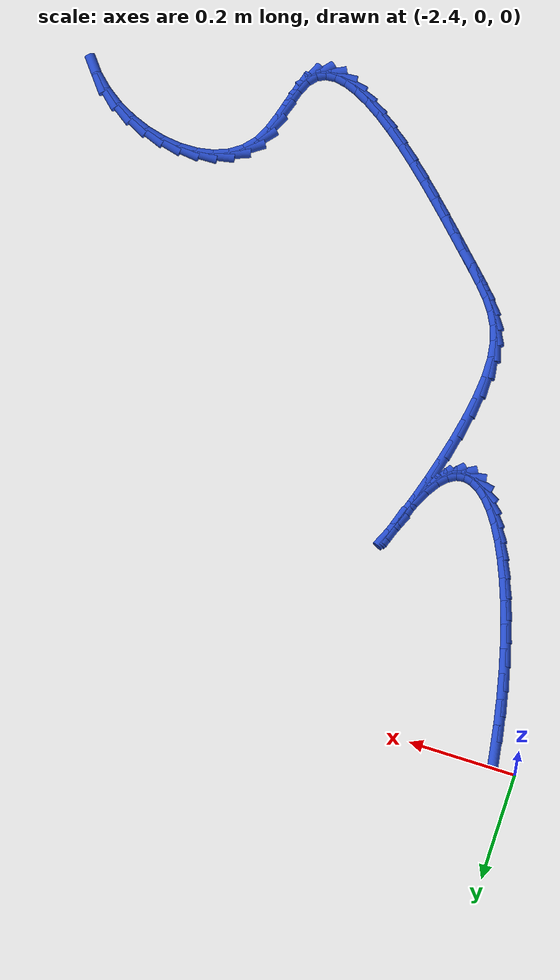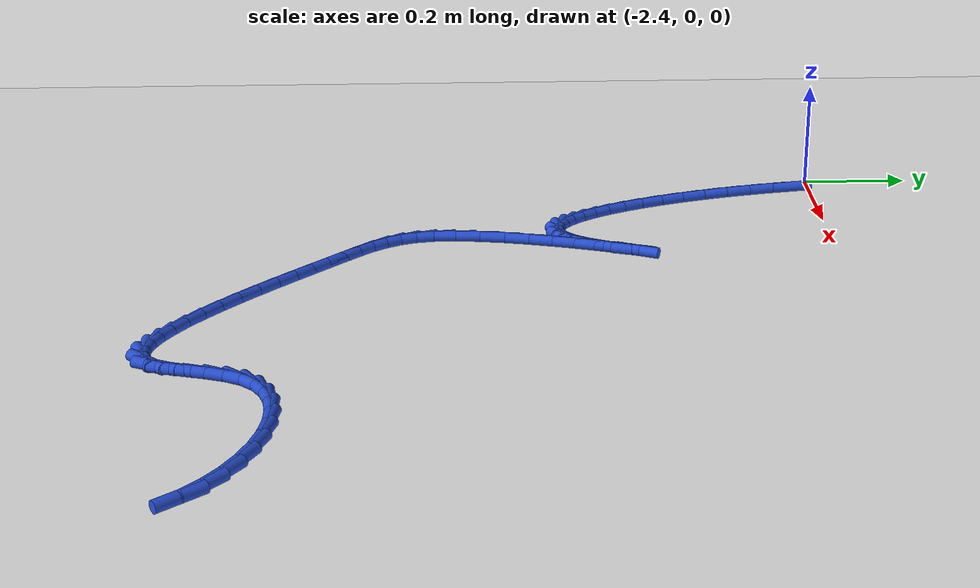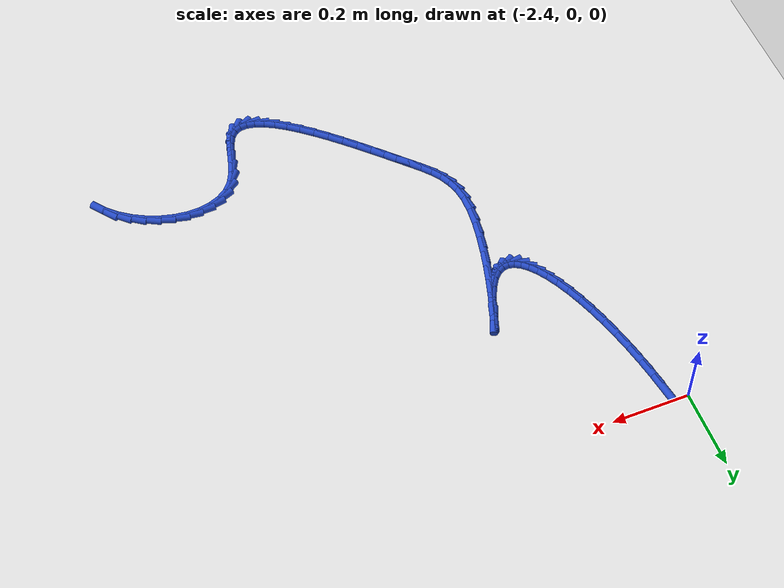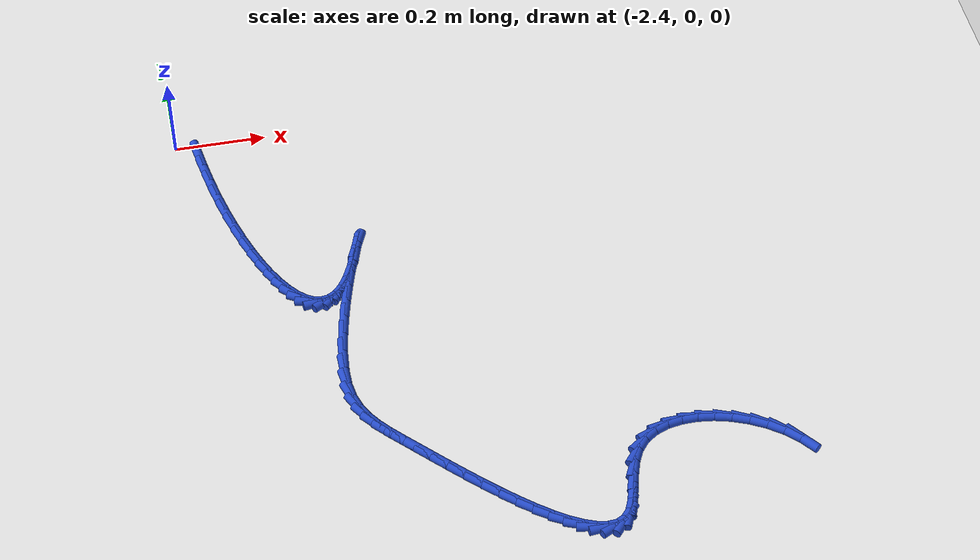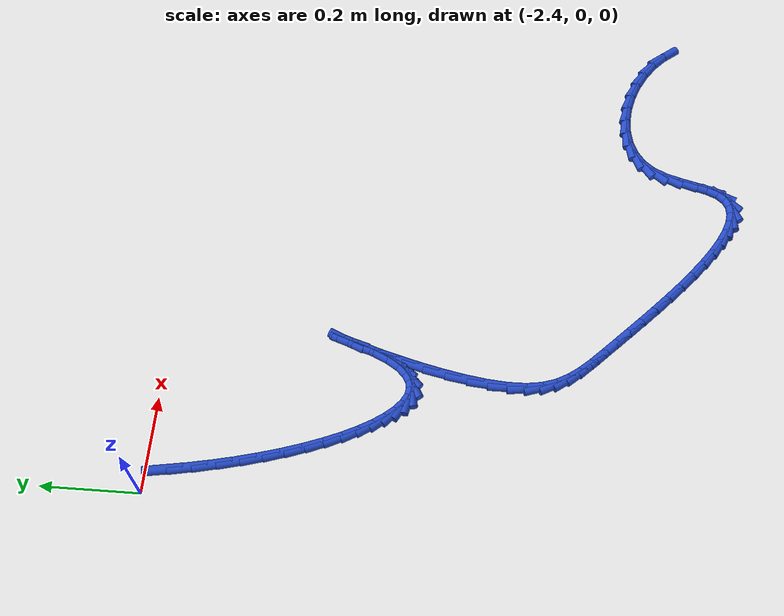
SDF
<sdf version="1.6">
 <world name="default">
  <model name="ground_plane">
   <static>1</static>
   <link name="link">
    <collision name="collision">
     <geometry><plane><normal>0 0 1</normal><size>100 100</size></plane></geometry>
     <surface><friction><ode><mu>100</mu><mu2>50</mu2></ode></friction></surface>
    </collision>
    <visual name="visual">
     <cast_shadows>0</cast_shadows>
     <geometry><plane><normal>0 0 1</normal><size>100 100</size></plane></geometry>
     <material>
      <script><uri>file://media/materials/scripts/gazebo.material</uri><name>Gazebo/WhiteGlow</name></script>
     </material>
    </visual>
   </link>
  </model>
  <model name="line">
   <link name="link_143">
    <pose>-2.3522133778798833 -0.036063328517618926 0.01 0 1.57 -1.4078476218534601</pose>
    <collision name="collision">
     <geometry><cylinder><radius>0.01</radius><length>0.08</length></cylinder></geometry>
    </collision>
    <visual name="visual">
     <material>
      <script><name>Gazebo/Blue</name><uri>file://media/materials/scripts/gazebo.material</uri></script>
     </material>
     <geometry><cylinder><radius>0.01</radius><length>0.08</length></cylinder></geometry>
    </visual>
   </link>
   <link name="link_144">
    <pose>-2.3443666337062106 -0.08379105533631914 0.01 0 1.57 -1.37872939363346</pose>
    <collision name="collision">
     <geometry><cylinder><radius>0.01</radius><length>0.08</length></cylinder></geometry>
    </collision>
    <visual name="visual">
     <material>
      <script><name>Gazebo/Blue</name><uri>file://media/materials/scripts/gazebo.material</uri></script>
     </material>
     <geometry><cylinder><radius>0.01</radius><length>0.08</length></cylinder></geometry>
    </visual>
   </link>
   <link name="link_145">
    <pose>-2.335224302626335 -0.13080401158854174 0.01 0 1.57 -1.3495189038603417</pose>
    <collision name="collision">
     <geometry><cylinder><radius>0.01</radius><length>0.08</length></cylinder></geometry>
    </collision>
    <visual name="visual">
     <material>
      <script><name>Gazebo/Blue</name><uri>file://media/materials/scripts/gazebo.material</uri></script>
     </material>
     <geometry><cylinder><radius>0.01</radius><length>0.08</length></cylinder></geometry>
    </visual>
   </link>
   <link name="link_146">
    <pose>-2.324893914633459 -0.17672478491549046 0.01 0 1.57 -1.3195155107283052</pose>
    <collision name="collision">
     <geometry><cylinder><radius>0.01</radius><length>0.08</length></cylinder></geometry>
    </collision>
    <visual name="visual">
     <material>
      <script><name>Gazebo/Blue</name><uri>file://media/materials/scripts/gazebo.material</uri></script>
     </material>
     <geometry><cylinder><radius>0.01</radius><length>0.08</length></cylinder></geometry>
    </visual>
   </link>
   <link name="link_147">
    <pose>-2.313482999720782 -0.22117596295836883 0.01 0 1.57 -1.2879175798667226</pose>
    <collision name="collision">
     <geometry><cylinder><radius>0.01</radius><length>0.08</length></cylinder></geometry>
    </collision>
    <visual name="visual">
     <material>
      <script><name>Gazebo/Blue</name><uri>file://media/materials/scripts/gazebo.material</uri></script>
     </material>
     <geometry><cylinder><radius>0.01</radius><length>0.08</length></cylinder></geometry>
    </visual>
   </link>
   <link name="link_148">
    <pose>-2.3010990878815076 -0.26378013335838085 0.01 0 1.57 -1.2537456449242672</pose>
    <collision name="collision">
     <geometry><cylinder><radius>0.01</radius><length>0.08</length></cylinder></geometry>
    </collision>
    <visual name="visual">
     <material>
      <script><name>Gazebo/Blue</name><uri>file://media/materials/scripts/gazebo.material</uri></script>
     </material>
     <geometry><cylinder><radius>0.01</radius><length>0.08</length></cylinder></geometry>
    </visual>
   </link>
   <link name="link_149">
    <pose>-2.2878497091088357 -0.3041598837567301 0.01 0 1.57 -1.215730057453764</pose>
    <collision name="collision">
     <geometry><cylinder><radius>0.01</radius><length>0.08</length></cylinder></geometry>
    </collision>
    <visual name="visual">
     <material>
      <script><name>Gazebo/Blue</name><uri>file://media/materials/scripts/gazebo.material</uri></script>
     </material>
     <geometry><cylinder><radius>0.01</radius><length>0.08</length></cylinder></geometry>
    </visual>
   </link>
   <link name="link_150">
    <pose>-2.273842393395967 -0.34193780179462013 0.01 0 1.57 -1.1721359842320798</pose>
    <collision name="collision">
     <geometry><cylinder><radius>0.01</radius><length>0.08</length></cylinder></geometry>
    </collision>
    <visual name="visual">
     <material>
      <script><name>Gazebo/Blue</name><uri>file://media/materials/scripts/gazebo.material</uri></script>
     </material>
     <geometry><cylinder><radius>0.01</radius><length>0.08</length></cylinder></geometry>
    </visual>
   </link>
   <link name="link_151">
    <pose>-2.259184670736104 -0.3767364751132549 0.01 0 1.57 -1.1204772736285187</pose>
    <collision name="collision">
     <geometry><cylinder><radius>0.01</radius><length>0.08</length></cylinder></geometry>
    </collision>
    <visual name="visual">
     <material>
      <script><name>Gazebo/Blue</name><uri>file://media/materials/scripts/gazebo.material</uri></script>
     </material>
     <geometry><cylinder><radius>0.01</radius><length>0.08</length></cylinder></geometry>
    </visual>
   </link>
   <link name="link_152">
    <pose>-2.2439840711224477 -0.40817849135383694 0.01 0 1.57 -1.0570309183152529</pose>
    <collision name="collision">
     <geometry><cylinder><radius>0.01</radius><length>0.08</length></cylinder></geometry>
    </collision>
    <visual name="visual">
     <material>
      <script><name>Gazebo/Blue</name><uri>file://media/materials/scripts/gazebo.material</uri></script>
     </material>
     <geometry><cylinder><radius>0.01</radius><length>0.08</length></cylinder></geometry>
    </visual>
   </link>
   <link name="link_153">
    <pose>-2.2283481245481984 -0.4358864381575722 0.01 0 1.57 -0.9759949423437424</pose>
    <collision name="collision">
     <geometry><cylinder><radius>0.01</radius><length>0.08</length></cylinder></geometry>
    </collision>
    <visual name="visual">
     <material>
      <script><name>Gazebo/Blue</name><uri>file://media/materials/scripts/gazebo.material</uri></script>
     </material>
     <geometry><cylinder><radius>0.01</radius><length>0.08</length></cylinder></geometry>
    </visual>
   </link>
   <link name="link_154">
    <pose>-2.212384361006558 -0.45948290316566326 0.01 0 1.57 -0.8680483868031929</pose>
    <collision name="collision">
     <geometry><cylinder><radius>0.01</radius><length>0.08</length></cylinder></geometry>
    </collision>
    <visual name="visual">
     <material>
      <script><name>Gazebo/Blue</name><uri>file://media/materials/scripts/gazebo.material</uri></script>
     </material>
     <geometry><cylinder><radius>0.01</radius><length>0.08</length></cylinder></geometry>
    </visual>
   </link>
   <link name="link_155">
    <pose>-2.196200310490728 -0.47859047401931365 0.01 0 1.57 -0.718188707735636</pose>
    <collision name="collision">
     <geometry><cylinder><radius>0.01</radius><length>0.08</length></cylinder></geometry>
    </collision>
    <visual name="visual">
     <material>
      <script><name>Gazebo/Blue</name><uri>file://media/materials/scripts/gazebo.material</uri></script>
     </material>
     <geometry><cylinder><radius>0.01</radius><length>0.08</length></cylinder></geometry>
    </visual>
   </link>
   <link name="link_156">
    <pose>-2.179903502993909 -0.4928317383597275 0.01 0 1.57 -0.5043220564186391</pose>
    <collision name="collision">
     <geometry><cylinder><radius>0.01</radius><length>0.08</length></cylinder></geometry>
    </collision>
    <visual name="visual">
     <material>
      <script><name>Gazebo/Blue</name><uri>file://media/materials/scripts/gazebo.material</uri></script>
     </material>
     <geometry><cylinder><radius>0.01</radius><length>0.08</length></cylinder></geometry>
    </visual>
   </link>
   <link name="link_157">
    <pose>-2.163601468509303 -0.501829283828108 0.01 0 1.57 -0.20548236583528795</pose>
    <collision name="collision">
     <geometry><cylinder><radius>0.01</radius><length>0.08</length></cylinder></geometry>
    </collision>
    <visual name="visual">
     <material>
      <script><name>Gazebo/Blue</name><uri>file://media/materials/scripts/gazebo.material</uri></script>
     </material>
     <geometry><cylinder><radius>0.01</radius><length>0.08</length></cylinder></geometry>
    </visual>
   </link>
   <link name="link_158">
    <pose>-2.1474017370301106 -0.5052056980656592 0.01 0 1.57 0.16253993331013752</pose>
    <collision name="collision">
     <geometry><cylinder><radius>0.01</radius><length>0.08</length></cylinder></geometry>
    </collision>
    <visual name="visual">
     <material>
      <script><name>Gazebo/Blue</name><uri>file://media/materials/scripts/gazebo.material</uri></script>
     </material>
     <geometry><cylinder><radius>0.01</radius><length>0.08</length></cylinder></geometry>
    </visual>
   </link>
   <link name="link_159">
    <pose>-2.1314118385495333 -0.5025835687135847 0.01 0 1.57 0.5211808057837196</pose>
    <collision name="collision">
     <geometry><cylinder><radius>0.01</radius><length>0.08</length></cylinder></geometry>
    </collision>
    <visual name="visual">
     <material>
      <script><name>Gazebo/Blue</name><uri>file://media/materials/scripts/gazebo.material</uri></script>
     </material>
     <geometry><cylinder><radius>0.01</radius><length>0.08</length></cylinder></geometry>
    </visual>
   </link>
   <link name="link_160">
    <pose>-2.115739303060772 -0.49358548341308817 0.01 0 1.57 0.801649177619604</pose>
    <collision name="collision">
     <geometry><cylinder><radius>0.01</radius><length>0.08</length></cylinder></geometry>
    </collision>
    <visual name="visual">
     <material>
      <script><name>Gazebo/Blue</name><uri>file://media/materials/scripts/gazebo.material</uri></script>
     </material>
     <geometry><cylinder><radius>0.01</radius><length>0.08</length></cylinder></geometry>
    </visual>
   </link>
   <link name="link_161">
    <pose>-2.1004916605570285 -0.4778340298053735 0.01 0 1.57 0.9992977012330994</pose>
    <collision name="collision">
     <geometry><cylinder><radius>0.01</radius><length>0.08</length></cylinder></geometry>
    </collision>
    <visual name="visual">
     <material>
      <script><name>Gazebo/Blue</name><uri>file://media/materials/scripts/gazebo.material</uri></script>
     </material>
     <geometry><cylinder><radius>0.01</radius><length>0.08</length></cylinder></geometry>
    </visual>
   </link>
   <link name="link_162">
    <pose>-2.085776441031504 -0.4549517955316441 0.01 0 1.57 1.1300608796352762</pose>
    <collision name="collision">
     <geometry><cylinder><radius>0.01</radius><length>0.08</length></cylinder></geometry>
    </collision>
    <visual name="visual">
     <material>
      <script><name>Gazebo/Blue</name><uri>file://media/materials/scripts/gazebo.material</uri></script>
     </material>
     <geometry><cylinder><radius>0.01</radius><length>0.08</length></cylinder></geometry>
    </visual>
   </link>
   <link name="link_163">
    <pose>-2.0718840916610124 -0.4254988392965956 0.01 0 1.57 1.1974535603733298</pose>
    <collision name="collision">
     <geometry><cylinder><radius>0.01</radius><length>0.08</length></cylinder></geometry>
    </collision>
    <visual name="visual">
     <material>
      <script><name>Gazebo/Blue</name><uri>file://media/materials/scripts/gazebo.material</uri></script>
     </material>
     <geometry><cylinder><radius>0.01</radius><length>0.08</length></cylinder></geometry>
    </visual>
   </link>
   <link name="link_164">
    <pose>-2.06020925055068 -0.3956943220467736 0.01 0 1.57 1.233679795730325</pose>
    <collision name="collision">
     <geometry><cylinder><radius>0.01</radius><length>0.08</length></cylinder></geometry>
    </collision>
    <visual name="visual">
     <material>
      <script><name>Gazebo/Blue</name><uri>file://media/materials/scripts/gazebo.material</uri></script>
     </material>
     <geometry><cylinder><radius>0.01</radius><length>0.08</length></cylinder></geometry>
    </visual>
   </link>
   <link name="link_165">
    <pose>-2.052555075892127 -0.3738561929816236 0.01 0 1.57 1.2722121771718582</pose>
    <collision name="collision">
     <geometry><cylinder><radius>0.01</radius><length>0.08</length></cylinder></geometry>
    </collision>
    <visual name="visual">
     <material>
      <script><name>Gazebo/Blue</name><uri>file://media/materials/scripts/gazebo.material</uri></script>
     </material>
     <geometry><cylinder><radius>0.01</radius><length>0.08</length></cylinder></geometry>
    </visual>
   </link>
   <link name="link_166">
    <pose>-2.049968441598008 -0.3654521795176094 0.01 0 1.57 1.1543787336380888</pose>
    <collision name="collision">
     <geometry><cylinder><radius>0.01</radius><length>0.08</length></cylinder></geometry>
    </collision>
    <visual name="visual">
     <material>
      <script><name>Gazebo/Blue</name><uri>file://media/materials/scripts/gazebo.material</uri></script>
     </material>
     <geometry><cylinder><radius>0.01</radius><length>0.08</length></cylinder></geometry>
    </visual>
   </link>
   <link name="link_167">
    <pose>-2.0518252183132804 -0.36965034806937896 0.01 0 1.57 1.2248191403423931</pose>
    <collision name="collision">
     <geometry><cylinder><radius>0.01</radius><length>0.08</length></cylinder></geometry>
    </collision>
    <visual name="visual">
     <material>
      <script><name>Gazebo/Blue</name><uri>file://media/materials/scripts/gazebo.material</uri></script>
     </material>
     <geometry><cylinder><radius>0.01</radius><length>0.08</length></cylinder></geometry>
    </visual>
   </link>
   <link name="link_168">
    <pose>-2.0572779346873142 -0.3847767685774681 0.01 0 1.57 1.2463066312788218</pose>
    <collision name="collision">
     <geometry><cylinder><radius>0.01</radius><length>0.08</length></cylinder></geometry>
    </collision>
    <visual name="visual">
     <material>
      <script><name>Gazebo/Blue</name><uri>file://media/materials/scripts/gazebo.material</uri></script>
     </material>
     <geometry><cylinder><radius>0.01</radius><length>0.08</length></cylinder></geometry>
    </visual>
   </link>
   <link name="link_169">
    <pose>-2.0654791193694844 -0.40915751098241215 0.01 0 1.57 1.2646559606643586</pose>
    <collision name="collision">
     <geometry><cylinder><radius>0.01</radius><length>0.08</length></cylinder></geometry>
    </collision>
    <visual name="visual">
     <material>
      <script><name>Gazebo/Blue</name><uri>file://media/materials/scripts/gazebo.material</uri></script>
     </material>
     <geometry><cylinder><radius>0.01</radius><length>0.08</length></cylinder></geometry>
    </visual>
   </link>
   <link name="link_170">
    <pose>-2.075581301009163 -0.4411186452247487 0.01 0 1.57 1.284303096876772</pose>
    <collision name="collision">
     <geometry><cylinder><radius>0.01</radius><length>0.08</length></cylinder></geometry>
    </collision>
    <visual name="visual">
     <material>
      <script><name>Gazebo/Blue</name><uri>file://media/materials/scripts/gazebo.material</uri></script>
     </material>
     <geometry><cylinder><radius>0.01</radius><length>0.08</length></cylinder></geometry>
    </visual>
   </link>
   <link name="link_171">
    <pose>-2.0867370082557244 -0.47898624124501304 0.01 0 1.57 1.3072012344858095</pose>
    <collision name="collision">
     <geometry><cylinder><radius>0.01</radius><length>0.08</length></cylinder></geometry>
    </collision>
    <visual name="visual">
     <material>
      <script><name>Gazebo/Blue</name><uri>file://media/materials/scripts/gazebo.material</uri></script>
     </material>
     <geometry><cylinder><radius>0.01</radius><length>0.08</length></cylinder></geometry>
    </visual>
   </link>
   <link name="link_172">
    <pose>-2.0980987697585403 -0.5210863689837413 0.01 0 1.57 1.3352037221863784</pose>
    <collision name="collision">
     <geometry><cylinder><radius>0.01</radius><length>0.08</length></cylinder></geometry>
    </collision>
    <visual name="visual">
     <material>
      <script><name>Gazebo/Blue</name><uri>file://media/materials/scripts/gazebo.material</uri></script>
     </material>
     <geometry><cylinder><radius>0.01</radius><length>0.08</length></cylinder></geometry>
    </visual>
   </link>
   <link name="link_173">
    <pose>-2.108819114166983 -0.5657450983814692 0.01 0 1.57 1.370810003350121</pose>
    <collision name="collision">
     <geometry><cylinder><radius>0.01</radius><length>0.08</length></cylinder></geometry>
    </collision>
    <visual name="visual">
     <material>
      <script><name>Gazebo/Blue</name><uri>file://media/materials/scripts/gazebo.material</uri></script>
     </material>
     <geometry><cylinder><radius>0.01</radius><length>0.08</length></cylinder></geometry>
    </visual>
   </link>
   <link name="link_174">
    <pose>-2.1180505701304275 -0.6112884993787333 0.01 0 1.57 1.417932145504439</pose>
    <collision name="collision">
     <geometry><cylinder><radius>0.01</radius><length>0.08</length></cylinder></geometry>
    </collision>
    <visual name="visual">
     <material>
      <script><name>Gazebo/Blue</name><uri>file://media/materials/scripts/gazebo.material</uri></script>
     </material>
     <geometry><cylinder><radius>0.01</radius><length>0.08</length></cylinder></geometry>
    </visual>
   </link>
   <link name="link_175">
    <pose>-2.1249456662982458 -0.6560426419160691 0.01 0 1.57 1.4832650324805252</pose>
    <collision name="collision">
     <geometry><cylinder><radius>0.01</radius><length>0.08</length></cylinder></geometry>
    </collision>
    <visual name="visual">
     <material>
      <script><name>Gazebo/Blue</name><uri>file://media/materials/scripts/gazebo.material</uri></script>
     </material>
     <geometry><cylinder><radius>0.01</radius><length>0.08</length></cylinder></geometry>
    </visual>
   </link>
   <link name="link_176">
    <pose>-2.12865693131981 -0.6983335959340128 0.01 0 1.57 -1.5624113835184998</pose>
    <collision name="collision">
     <geometry><cylinder><radius>0.01</radius><length>0.08</length></cylinder></geometry>
    </collision>
    <visual name="visual">
     <material>
      <script><name>Gazebo/Blue</name><uri>file://media/materials/scripts/gazebo.material</uri></script>
     </material>
     <geometry><cylinder><radius>0.01</radius><length>0.08</length></cylinder></geometry>
    </visual>
   </link>
   <link name="link_177">
    <pose>-2.1283370039827516 -0.7364876810289268 0.01 0 1.57 -1.4222296351383807</pose>
    <collision name="collision">
     <geometry><cylinder><radius>0.01</radius><length>0.08</length></cylinder></geometry>
    </collision>
    <visual name="visual">
     <material>
      <script><name>Gazebo/Blue</name><uri>file://media/materials/scripts/gazebo.material</uri></script>
     </material>
     <geometry><cylinder><radius>0.01</radius><length>0.08</length></cylinder></geometry>
    </visual>
   </link>
   <link name="link_178">
    <pose>-2.1234055658066713 -0.7694365357449441 0.01 0 1.57 -1.2567545738718553</pose>
    <collision name="collision">
     <geometry><cylinder><radius>0.01</radius><length>0.08</length></cylinder></geometry>
    </collision>
    <visual name="visual">
     <material>
      <script><name>Gazebo/Blue</name><uri>file://media/materials/scripts/gazebo.material</uri></script>
     </material>
     <geometry><cylinder><radius>0.01</radius><length>0.08</length></cylinder></geometry>
    </visual>
   </link>
   <link name="link_179">
    <pose>-2.1141228698696306 -0.7980171636871853 0.01 0 1.57 -1.091630424358296</pose>
    <collision name="collision">
     <geometry><cylinder><radius>0.01</radius><length>0.08</length></cylinder></geometry>
    </collision>
    <visual name="visual">
     <material>
      <script><name>Gazebo/Blue</name><uri>file://media/materials/scripts/gazebo.material</uri></script>
     </material>
     <geometry><cylinder><radius>0.01</radius><length>0.08</length></cylinder></geometry>
    </visual>
   </link>
   <link name="link_180">
    <pose>-2.100914139258514 -0.8234405141263914 0.01 0 1.57 -0.952234365671047</pose>
    <collision name="collision">
     <geometry><cylinder><radius>0.01</radius><length>0.08</length></cylinder></geometry>
    </collision>
    <visual name="visual">
     <material>
      <script><name>Gazebo/Blue</name><uri>file://media/materials/scripts/gazebo.material</uri></script>
     </material>
     <geometry><cylinder><radius>0.01</radius><length>0.08</length></cylinder></geometry>
    </visual>
   </link>
   <link name="link_181">
    <pose>-2.0842045970602077 -0.8469175363333032 0.01 0 1.57 -0.8548076883034055</pose>
    <collision name="collision">
     <geometry><cylinder><radius>0.01</radius><length>0.08</length></cylinder></geometry>
    </collision>
    <visual name="visual">
     <material>
      <script><name>Gazebo/Blue</name><uri>file://media/materials/scripts/gazebo.material</uri></script>
     </material>
     <geometry><cylinder><radius>0.01</radius><length>0.08</length></cylinder></geometry>
    </visual>
   </link>
   <link name="link_182">
    <pose>-2.064419466361596 -0.8696591795786617 0.01 0 1.57 -0.8025196236868155</pose>
    <collision name="collision">
     <geometry><cylinder><radius>0.01</radius><length>0.08</length></cylinder></geometry>
    </collision>
    <visual name="visual">
     <material>
      <script><name>Gazebo/Blue</name><uri>file://media/materials/scripts/gazebo.material</uri></script>
     </material>
     <geometry><cylinder><radius>0.01</radius><length>0.08</length></cylinder></geometry>
    </visual>
   </link>
   <link name="link_183">
    <pose>-2.0419839702495657 -0.8928763931332073 0.01 0 1.57 -0.7893049822998159</pose>
    <collision name="collision">
     <geometry><cylinder><radius>0.01</radius><length>0.08</length></cylinder></geometry>
    </collision>
    <visual name="visual">
     <material>
      <script><name>Gazebo/Blue</name><uri>file://media/materials/scripts/gazebo.material</uri></script>
     </material>
     <geometry><cylinder><radius>0.01</radius><length>0.08</length></cylinder></geometry>
    </visual>
   </link>
   <link name="link_184">
    <pose>-2.0173218601751923 -0.9177319607912107 0.01 0 1.57 -0.7896323238639105</pose>
    <collision name="collision">
     <geometry><cylinder><radius>0.01</radius><length>0.08</length></cylinder></geometry>
    </collision>
    <visual name="visual">
     <material>
      <script><name>Gazebo/Blue</name><uri>file://media/materials/scripts/gazebo.material</uri></script>
     </material>
     <geometry><cylinder><radius>0.01</radius><length>0.08</length></cylinder></geometry>
    </visual>
   </link>
   <link name="link_185">
    <pose>-1.9908282352398818 -0.9444508975982437 0.01 0 1.57 -0.7853841892419949</pose>
    <collision name="collision">
     <geometry><cylinder><radius>0.01</radius><length>0.08</length></cylinder></geometry>
    </collision>
    <visual name="visual">
     <material>
      <script><name>Gazebo/Blue</name><uri>file://media/materials/scripts/gazebo.material</uri></script>
     </material>
     <geometry><cylinder><radius>0.01</radius><length>0.08</length></cylinder></geometry>
    </visual>
   </link>
   <link name="link_186">
    <pose>-1.9628721618677472 -0.9724061896562662 0.01 0 1.57 -0.7764248066476785</pose>
    <collision name="collision">
     <geometry><cylinder><radius>0.01</radius><length>0.08</length></cylinder></geometry>
    </collision>
    <visual name="visual">
     <material>
      <script><name>Gazebo/Blue</name><uri>file://media/materials/scripts/gazebo.material</uri></script>
     </material>
     <geometry><cylinder><radius>0.01</radius><length>0.08</length></cylinder></geometry>
    </visual>
   </link>
   <link name="link_187">
    <pose>-1.9338217602919916 -1.0009398549870963 0.01 0 1.57 -0.7626897579218918</pose>
    <collision name="collision">
     <geometry><cylinder><radius>0.01</radius><length>0.08</length></cylinder></geometry>
    </collision>
    <visual name="visual">
     <material>
      <script><name>Gazebo/Blue</name><uri>file://media/materials/scripts/gazebo.material</uri></script>
     </material>
     <geometry><cylinder><radius>0.01</radius><length>0.08</length></cylinder></geometry>
    </visual>
   </link>
   <link name="link_188">
    <pose>-1.9040451507458216 -1.0293939116125517 0.01 0 1.57 -0.7436215730933161</pose>
    <collision name="collision">
     <geometry><cylinder><radius>0.01</radius><length>0.08</length></cylinder></geometry>
    </collision>
    <visual name="visual">
     <material>
      <script><name>Gazebo/Blue</name><uri>file://media/materials/scripts/gazebo.material</uri></script>
     </material>
     <geometry><cylinder><radius>0.01</radius><length>0.08</length></cylinder></geometry>
    </visual>
   </link>
   <link name="link_189">
    <pose>-1.873910453462442 -1.0571103775544515 0.01 0 1.57 -0.7181115708469668</pose>
    <collision name="collision">
     <geometry><cylinder><radius>0.01</radius><length>0.08</length></cylinder></geometry>
    </collision>
    <visual name="visual">
     <material>
      <script><name>Gazebo/Blue</name><uri>file://media/materials/scripts/gazebo.material</uri></script>
     </material>
     <geometry><cylinder><radius>0.01</radius><length>0.08</length></cylinder></geometry>
    </visual>
   </link>
   <link name="link_190">
    <pose>-1.8437857886750582 -1.0834312708346132 0.01 0 1.57 -0.6843038185545237</pose>
    <collision name="collision">
     <geometry><cylinder><radius>0.01</radius><length>0.08</length></cylinder></geometry>
    </collision>
    <visual name="visual">
     <material>
      <script><name>Gazebo/Blue</name><uri>file://media/materials/scripts/gazebo.material</uri></script>
     </material>
     <geometry><cylinder><radius>0.01</radius><length>0.08</length></cylinder></geometry>
    </visual>
   </link>
   <link name="link_191">
    <pose>-1.8140392766168756 -1.1076986094748555 0.01 0 1.57 -0.6391976193035402</pose>
    <collision name="collision">
     <geometry><cylinder><radius>0.01</radius><length>0.08</length></cylinder></geometry>
    </collision>
    <visual name="visual">
     <material>
      <script><name>Gazebo/Blue</name><uri>file://media/materials/scripts/gazebo.material</uri></script>
     </material>
     <geometry><cylinder><radius>0.01</radius><length>0.08</length></cylinder></geometry>
    </visual>
   </link>
   <link name="link_192">
    <pose>-1.7850390375210994 -1.1292544114969962 0.01 0 1.57 -0.577898469650644</pose>
    <collision name="collision">
     <geometry><cylinder><radius>0.01</radius><length>0.08</length></cylinder></geometry>
    </collision>
    <visual name="visual">
     <material>
      <script><name>Gazebo/Blue</name><uri>file://media/materials/scripts/gazebo.material</uri></script>
     </material>
     <geometry><cylinder><radius>0.01</radius><length>0.08</length></cylinder></geometry>
    </visual>
   </link>
   <link name="link_193">
    <pose>-1.757153191620934 -1.1474406949228535 0.01 0 1.57 -0.4922252137372178</pose>
    <collision name="collision">
     <geometry><cylinder><radius>0.01</radius><length>0.08</length></cylinder></geometry>
    </collision>
    <visual name="visual">
     <material>
      <script><name>Gazebo/Blue</name><uri>file://media/materials/scripts/gazebo.material</uri></script>
     </material>
     <geometry><cylinder><radius>0.01</radius><length>0.08</length></cylinder></geometry>
    </visual>
   </link>
   <link name="link_194">
    <pose>-1.7307498591495867 -1.1615994777742462 0.01 0 1.57 -0.3682361936754067</pose>
    <collision name="collision">
     <geometry><cylinder><radius>0.01</radius><length>0.08</length></cylinder></geometry>
    </collision>
    <visual name="visual">
     <material>
      <script><name>Gazebo/Blue</name><uri>file://media/materials/scripts/gazebo.material</uri></script>
     </material>
     <geometry><cylinder><radius>0.01</radius><length>0.08</length></cylinder></geometry>
    </visual>
   </link>
   <link name="link_195">
    <pose>-1.7061971603402608 -1.1710727780729921 0.01 0 1.57 -0.1828476011914939</pose>
    <collision name="collision">
     <geometry><cylinder><radius>0.01</radius><length>0.08</length></cylinder></geometry>
    </collision>
    <visual name="visual">
     <material>
      <script><name>Gazebo/Blue</name><uri>file://media/materials/scripts/gazebo.material</uri></script>
     </material>
     <geometry><cylinder><radius>0.01</radius><length>0.08</length></cylinder></geometry>
    </visual>
   </link>
   <link name="link_196">
    <pose>-1.6838632154261621 -1.1752026138409095 0.01 0 1.57 0.09449687466622476</pose>
    <collision name="collision">
     <geometry><cylinder><radius>0.01</radius><length>0.08</length></cylinder></geometry>
    </collision>
    <visual name="visual">
     <material>
      <script><name>Gazebo/Blue</name><uri>file://media/materials/scripts/gazebo.material</uri></script>
     </material>
     <geometry><cylinder><radius>0.01</radius><length>0.08</length></cylinder></geometry>
    </visual>
   </link>
   <link name="link_197">
    <pose>-1.6641161446404964 -1.1733310030998165 0.01 0 1.57 0.4700585576435613</pose>
    <collision name="collision">
     <geometry><cylinder><radius>0.01</radius><length>0.08</length></cylinder></geometry>
    </collision>
    <visual name="visual">
     <material>
      <script><name>Gazebo/Blue</name><uri>file://media/materials/scripts/gazebo.material</uri></script>
     </material>
     <geometry><cylinder><radius>0.01</radius><length>0.08</length></cylinder></geometry>
    </visual>
   </link>
   <link name="link_198">
    <pose>-1.647324068216469 -1.1647999638715314 0.01 0 1.57 0.8663835869783367</pose>
    <collision name="collision">
     <geometry><cylinder><radius>0.01</radius><length>0.08</length></cylinder></geometry>
    </collision>
    <visual name="visual">
     <material>
      <script><name>Gazebo/Blue</name><uri>file://media/materials/scripts/gazebo.material</uri></script>
     </material>
     <geometry><cylinder><radius>0.01</radius><length>0.08</length></cylinder></geometry>
    </visual>
   </link>
   <link name="link_199">
    <pose>-1.6338551061736435 -1.1489515145054907 0.01 0 1.57 1.1590660096832581</pose>
    <collision name="collision">
     <geometry><cylinder><radius>0.01</radius><length>0.08</length></cylinder></geometry>
    </collision>
    <visual name="visual">
     <material>
      <script><name>Gazebo/Blue</name><uri>file://media/materials/scripts/gazebo.material</uri></script>
     </material>
     <geometry><cylinder><radius>0.01</radius><length>0.08</length></cylinder></geometry>
    </visual>
   </link>
   <link name="link_200">
    <pose>-1.6237025103643619 -1.1257025340180098 0.01 0 1.57 1.2871416601103545</pose>
    <collision name="collision">
     <geometry><cylinder><radius>0.01</radius><length>0.08</length></cylinder></geometry>
    </collision>
    <visual name="visual">
     <material>
      <script><name>Gazebo/Blue</name><uri>file://media/materials/scripts/gazebo.material</uri></script>
     </material>
     <geometry><cylinder><radius>0.01</radius><length>0.08</length></cylinder></geometry>
    </visual>
   </link>
   <link name="link_201">
    <pose>-1.6153971968876215 -1.0972123945999832 0.01 0 1.57 1.3098852242828765</pose>
    <collision name="collision">
     <geometry><cylinder><radius>0.01</radius><length>0.08</length></cylinder></geometry>
    </collision>
    <visual name="visual">
     <material>
      <script><name>Gazebo/Blue</name><uri>file://media/materials/scripts/gazebo.material</uri></script>
     </material>
     <geometry><cylinder><radius>0.01</radius><length>0.08</length></cylinder></geometry>
    </visual>
   </link>
   <link name="link_202">
    <pose>-1.6071135533176943 -1.06618720525115 0.01 0 1.57 1.2548067622075731</pose>
    <collision name="collision">
     <geometry><cylinder><radius>0.01</radius><length>0.08</length></cylinder></geometry>
    </collision>
    <visual name="visual">
     <material>
      <script><name>Gazebo/Blue</name><uri>file://media/materials/scripts/gazebo.material</uri></script>
     </material>
     <geometry><cylinder><radius>0.01</radius><length>0.08</length></cylinder></geometry>
    </visual>
   </link>
   <link name="link_203">
    <pose>-1.5970259672288531 -1.0353330749712506 0.01 0 1.57 1.1149377356033863</pose>
    <collision name="collision">
     <geometry><cylinder><radius>0.01</radius><length>0.08</length></cylinder></geometry>
    </collision>
    <visual name="visual">
     <material>
      <script><name>Gazebo/Blue</name><uri>file://media/materials/scripts/gazebo.material</uri></script>
     </material>
     <geometry><cylinder><radius>0.01</radius><length>0.08</length></cylinder></geometry>
    </visual>
   </link>
   <link name="link_204">
    <pose>-1.5833088261953685 -1.007356112760024 0.01 0 1.57 0.8762234638312758</pose>
    <collision name="collision">
     <geometry><cylinder><radius>0.01</radius><length>0.08</length></cylinder></geometry>
    </collision>
    <visual name="visual">
     <material>
      <script><name>Gazebo/Blue</name><uri>file://media/materials/scripts/gazebo.material</uri></script>
     </material>
     <geometry><cylinder><radius>0.01</radius><length>0.08</length></cylinder></geometry>
    </visual>
   </link>
   <link name="link_205">
    <pose>-1.5644104575338744 -0.9846704413135908 0.01 0 1.57 0.6152374939920924</pose>
    <collision name="collision">
     <geometry><cylinder><radius>0.01</radius><length>0.08</length></cylinder></geometry>
    </collision>
    <visual name="visual">
     <material>
      <script><name>Gazebo/Blue</name><uri>file://media/materials/scripts/gazebo.material</uri></script>
     </material>
     <geometry><cylinder><radius>0.01</radius><length>0.08</length></cylinder></geometry>
    </visual>
   </link>
   <link name="link_206">
    <pose>-1.5405474597532287 -0.9678054222314594 0.01 0 1.57 0.38359373842663136</pose>
    <collision name="collision">
     <geometry><cylinder><radius>0.01</radius><length>0.08</length></cylinder></geometry>
    </collision>
    <visual name="visual">
     <material>
      <script><name>Gazebo/Blue</name><uri>file://media/materials/scripts/gazebo.material</uri></script>
     </material>
     <geometry><cylinder><radius>0.01</radius><length>0.08</length></cylinder></geometry>
    </visual>
   </link>
   <link name="link_207">
    <pose>-1.512638727789113 -0.9565418549076466 0.01 0 1.57 0.1873511994864863</pose>
    <collision name="collision">
     <geometry><cylinder><radius>0.01</radius><length>0.08</length></cylinder></geometry>
    </collision>
    <visual name="visual">
     <material>
      <script><name>Gazebo/Blue</name><uri>file://media/materials/scripts/gazebo.material</uri></script>
     </material>
     <geometry><cylinder><radius>0.01</radius><length>0.08</length></cylinder></geometry>
    </visual>
   </link>
   <link name="link_208">
    <pose>-1.4816049371511617 -0.950658640861832 0.01 0 1.57 0.021777514026340074</pose>
    <collision name="collision">
     <geometry><cylinder><radius>0.01</radius><length>0.08</length></cylinder></geometry>
    </collision>
    <visual name="visual">
     <material>
      <script><name>Gazebo/Blue</name><uri>file://media/materials/scripts/gazebo.material</uri></script>
     </material>
     <geometry><cylinder><radius>0.01</radius><length>0.08</length></cylinder></geometry>
    </visual>
   </link>
   <link name="link_209">
    <pose>-1.44836676334901 -0.9499346816136944 0.01 0 1.57 -0.12147220689524448</pose>
    <collision name="collision">
     <geometry><cylinder><radius>0.01</radius><length>0.08</length></cylinder></geometry>
    </collision>
    <visual name="visual">
     <material>
      <script><name>Gazebo/Blue</name><uri>file://media/materials/scripts/gazebo.material</uri></script>
     </material>
     <geometry><cylinder><radius>0.01</radius><length>0.08</length></cylinder></geometry>
    </visual>
   </link>
   <link name="link_210">
    <pose>-1.4138448818922922 -0.9541488786829132 0.01 0 1.57 -0.2506369908183602</pose>
    <collision name="collision">
     <geometry><cylinder><radius>0.01</radius><length>0.08</length></cylinder></geometry>
    </collision>
    <visual name="visual">
     <material>
      <script><name>Gazebo/Blue</name><uri>file://media/materials/scripts/gazebo.material</uri></script>
     </material>
     <geometry><cylinder><radius>0.01</radius><length>0.08</length></cylinder></geometry>
    </visual>
   </link>
   <link name="link_211">
    <pose>-1.3789599682906433 -0.9630801335891668 0.01 0 1.57 -0.37285645231388115</pose>
    <collision name="collision">
     <geometry><cylinder><radius>0.01</radius><length>0.08</length></cylinder></geometry>
    </collision>
    <visual name="visual">
     <material>
      <script><name>Gazebo/Blue</name><uri>file://media/materials/scripts/gazebo.material</uri></script>
     </material>
     <geometry><cylinder><radius>0.01</radius><length>0.08</length></cylinder></geometry>
    </visual>
   </link>
   <link name="link_212">
    <pose>-1.3446326980536978 -0.9765073478521351 0.01 0 1.57 -0.4942759128302853</pose>
    <collision name="collision">
     <geometry><cylinder><radius>0.01</radius><length>0.08</length></cylinder></geometry>
    </collision>
    <visual name="visual">
     <material>
      <script><name>Gazebo/Blue</name><uri>file://media/materials/scripts/gazebo.material</uri></script>
     </material>
     <geometry><cylinder><radius>0.01</radius><length>0.08</length></cylinder></geometry>
    </visual>
   </link>
   <link name="link_213">
    <pose>-1.3117837466910909 -0.9942094229914971 0.01 0 1.57 -0.6203770851401778</pose>
    <collision name="collision">
     <geometry><cylinder><radius>0.01</radius><length>0.08</length></cylinder></geometry>
    </collision>
    <visual name="visual">
     <material>
      <script><name>Gazebo/Blue</name><uri>file://media/materials/scripts/gazebo.material</uri></script>
     </material>
     <geometry><cylinder><radius>0.01</radius><length>0.08</length></cylinder></geometry>
    </visual>
   </link>
   <link name="link_214">
    <pose>-1.281333789712457 -1.0159652605269316 0.01 0 1.57 -0.7561610291549679</pose>
    <collision name="collision">
     <geometry><cylinder><radius>0.01</radius><length>0.08</length></cylinder></geometry>
    </collision>
    <visual name="visual">
     <material>
      <script><name>Gazebo/Blue</name><uri>file://media/materials/scripts/gazebo.material</uri></script>
     </material>
     <geometry><cylinder><radius>0.01</radius><length>0.08</length></cylinder></geometry>
    </visual>
   </link>
   <link name="link_215">
    <pose>-1.254203502627431 -1.0415537619781174 0.01 0 1.57 -0.9059496488933442</pose>
    <collision name="collision">
     <geometry><cylinder><radius>0.01</radius><length>0.08</length></cylinder></geometry>
    </collision>
    <visual name="visual">
     <material>
      <script><name>Gazebo/Blue</name><uri>file://media/materials/scripts/gazebo.material</uri></script>
     </material>
     <geometry><cylinder><radius>0.01</radius><length>0.08</length></cylinder></geometry>
    </visual>
   </link>
  </model>
 </world>
</sdf>
